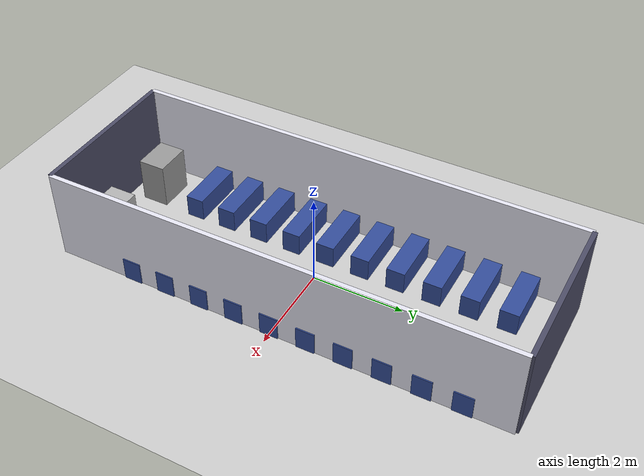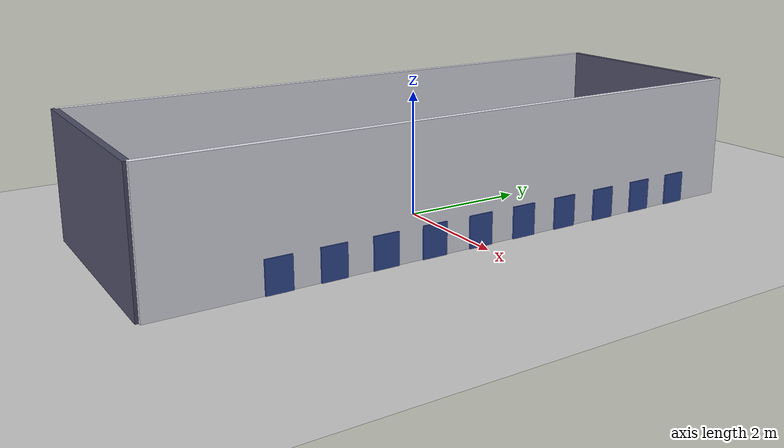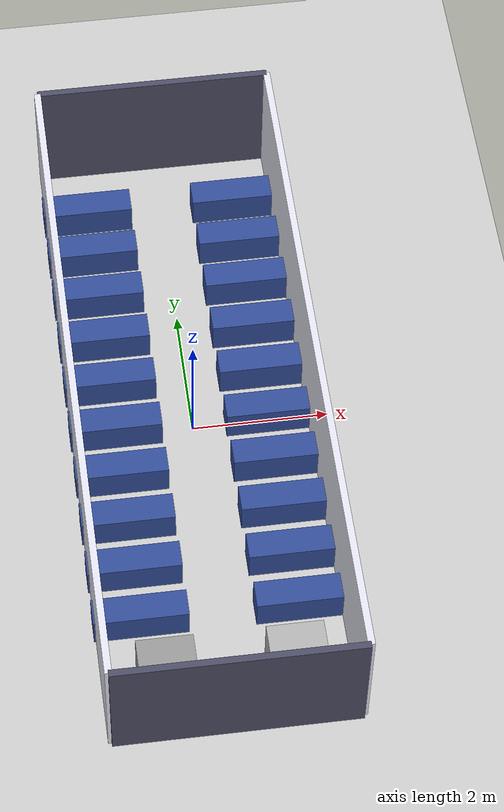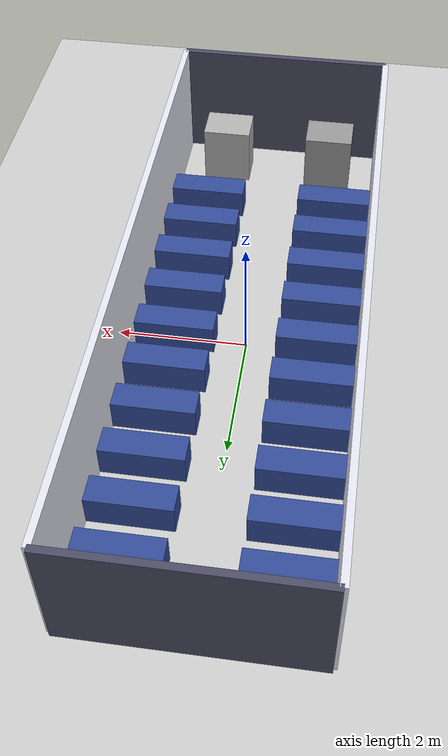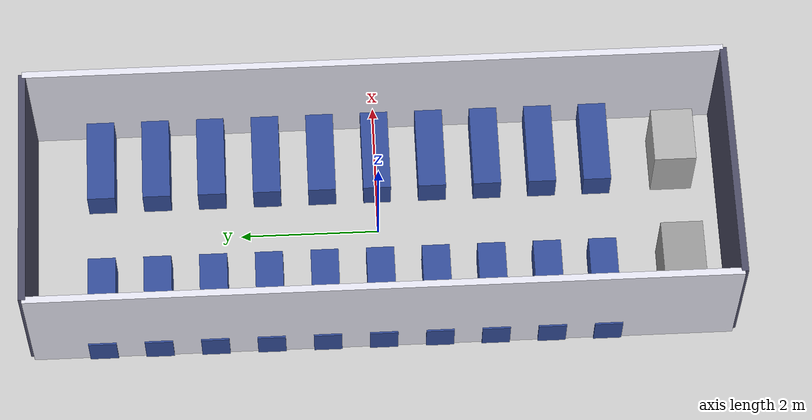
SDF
<?xml version="1.0"?>
<sdf version="1.6">
  <world name="airplane_cabin">

    <!-- ========== PHYSICS SETTINGS ========== -->
    <physics type="ode">
      <real_time_update_rate>1000.0</real_time_update_rate>
      <max_step_size>0.001</max_step_size>
    </physics>

    <!-- ========== LIGHTING ========== -->
    <light type="directional" name="sun">
      <cast_shadows>true</cast_shadows>
      <pose>0 0 10 0 0 0</pose>
      <diffuse>0.8 0.8 0.8 1</diffuse>
      <specular>0.2 0.2 0.2 1</specular>
      <attenuation>
        <range>1000</range>
        <constant>0.9</constant>
        <linear>0.01</linear>
        <quadratic>0.001</quadratic>
      </attenuation>
      <direction>-0.5 0.1 -0.9</direction>
    </light>

    <light name="cabin_light_1" type="point">
      <pose>0 0 2.5 0 0 0</pose>
      <diffuse>0.8 0.8 0.8 1</diffuse>
      <specular>0.2 0.2 0.2 1</specular>
    </light>

    <!-- ========== GROUND PLANE ========== -->
    <model name="ground_plane">
      <static>true</static>
      <link name="link">
        <collision name="collision">
          <geometry>
            <plane>
              <normal>0 0 1</normal>
              <size>100 100</size>
            </plane>
          </geometry>
        </collision>
        <visual name="visual">
          <geometry>
            <plane>
              <normal>0 0 1</normal>
              <size>100 100</size>
            </plane>
          </geometry>
          <material>
            <ambient>0.8 0.8 0.8 1</ambient>
            <diffuse>0.8 0.8 0.8 1</diffuse>
            <specular>0.8 0.8 0.8 1</specular>
          </material>
        </visual>
      </link>
    </model>

    <!-- ========== CABIN WALLS ========== -->
    <!-- Left Wall -->
    <model name="left_wall">
      <static>true</static>
      <pose>-1.75 0 1.0 0 0 0</pose>
      <link name="link">
        <collision name="collision">
          <geometry>
            <box>
              <size>0.1 10 2.0</size>
            </box>
          </geometry>
        </collision>
        <visual name="visual">
          <geometry>
            <box>
              <size>0.1 10 2.0</size>
            </box>
          </geometry>
          <material>
            <ambient>0.9 0.9 0.95 1</ambient>
            <diffuse>0.9 0.9 0.95 1</diffuse>
          </material>
        </visual>
      </link>
    </model>

    <!-- Right Wall -->
    <model name="right_wall">
      <static>true</static>
      <pose>1.75 0 1.0 0 0 0</pose>
      <link name="link">
        <collision name="collision">
          <geometry>
            <box>
              <size>0.1 10 2.0</size>
            </box>
          </geometry>
        </collision>
        <visual name="visual">
          <geometry>
            <box>
              <size>0.1 10 2.0</size>
            </box>
          </geometry>
          <material>
            <ambient>0.9 0.9 0.95 1</ambient>
            <diffuse>0.9 0.9 0.95 1</diffuse>
          </material>
        </visual>
      </link>
    </model>

    <!-- Front Wall (Cockpit) -->
    <model name="front_wall">
      <static>true</static>
      <pose>0 5.0 1.0 0 0 0</pose>
      <link name="link">
        <collision name="collision">
          <geometry>
            <box>
              <size>3.5 0.1 2.0</size>
            </box>
          </geometry>
        </collision>
        <visual name="visual">
          <geometry>
            <box>
              <size>3.5 0.1 2.0</size>
            </box>
          </geometry>
          <material>
            <ambient>0.3 0.3 0.4 1</ambient>
            <diffuse>0.3 0.3 0.4 1</diffuse>
          </material>
        </visual>
      </link>
    </model>

    <!-- Back Wall (Galley/Lavatory Area) -->
    <model name="back_wall">
      <static>true</static>
      <pose>0 -5.0 1.0 0 0 0</pose>
      <link name="link">
        <collision name="collision">
          <geometry>
            <box>
              <size>3.5 0.1 2.0</size>
            </box>
          </geometry>
        </collision>
        <visual name="visual">
          <geometry>
            <box>
              <size>3.5 0.1 2.0</size>
            </box>
          </geometry>
          <material>
            <ambient>0.3 0.3 0.4 1</ambient>
            <diffuse>0.3 0.3 0.4 1</diffuse>
          </material>
        </visual>
      </link>
    </model>

    <!-- ========== LEFT SIDE SEATS (ROWS 1-10) ========== -->
    <model name="seat_row1_left">
      <static>true</static>
      <pose>-1.15 4.0 0.25 0 0 0</pose>
      <link name="link">
        <collision name="collision">
          <geometry>
            <box>
              <size>1.35 0.40 0.5</size>
            </box>
          </geometry>
        </collision>
        <visual name="visual">
          <geometry>
            <box>
              <size>1.35 0.40 0.5</size>
            </box>
          </geometry>
          <material>
            <ambient>0.2 0.3 0.6 1</ambient>
            <diffuse>0.2 0.3 0.6 1</diffuse>
          </material>
        </visual>
      </link>
    </model>

    <model name="seat_row2_left">
      <static>true</static>
      <pose>-1.15 3.2 0.25 0 0 0</pose>
      <link name="link">
        <collision name="collision">
          <geometry>
            <box>
              <size>1.35 0.40 0.5</size>
            </box>
          </geometry>
        </collision>
        <visual name="visual">
          <geometry>
            <box>
              <size>1.35 0.40 0.5</size>
            </box>
          </geometry>
          <material>
            <ambient>0.2 0.3 0.6 1</ambient>
            <diffuse>0.2 0.3 0.6 1</diffuse>
          </material>
        </visual>
      </link>
    </model>

    <model name="seat_row3_left">
      <static>true</static>
      <pose>-1.15 2.4 0.25 0 0 0</pose>
      <link name="link">
        <collision name="collision">
          <geometry>
            <box>
              <size>1.35 0.40 0.5</size>
            </box>
          </geometry>
        </collision>
        <visual name="visual">
          <geometry>
            <box>
              <size>1.35 0.40 0.5</size>
            </box>
          </geometry>
          <material>
            <ambient>0.2 0.3 0.6 1</ambient>
            <diffuse>0.2 0.3 0.6 1</diffuse>
          </material>
        </visual>
      </link>
    </model>

    <model name="seat_row4_left">
      <static>true</static>
      <pose>-1.15 1.6 0.25 0 0 0</pose>
      <link name="link">
        <collision name="collision">
          <geometry>
            <box>
              <size>1.35 0.40 0.5</size>
            </box>
          </geometry>
        </collision>
        <visual name="visual">
          <geometry>
            <box>
              <size>1.35 0.40 0.5</size>
            </box>
          </geometry>
          <material>
            <ambient>0.2 0.3 0.6 1</ambient>
            <diffuse>0.2 0.3 0.6 1</diffuse>
          </material>
        </visual>
      </link>
    </model>

    <model name="seat_row5_left">
      <static>true</static>
      <pose>-1.15 0.8 0.25 0 0 0</pose>
      <link name="link">
        <collision name="collision">
          <geometry>
            <box>
              <size>1.35 0.40 0.5</size>
            </box>
          </geometry>
        </collision>
        <visual name="visual">
          <geometry>
            <box>
              <size>1.35 0.40 0.5</size>
            </box>
          </geometry>
          <material>
            <ambient>0.2 0.3 0.6 1</ambient>
            <diffuse>0.2 0.3 0.6 1</diffuse>
          </material>
        </visual>
      </link>
    </model>

    <model name="seat_row6_left">
      <static>true</static>
      <pose>-1.15 0.0 0.25 0 0 0</pose>
      <link name="link">
        <collision name="collision">
          <geometry>
            <box>
              <size>1.35 0.40 0.5</size>
            </box>
          </geometry>
        </collision>
        <visual name="visual">
          <geometry>
            <box>
              <size>1.35 0.40 0.5</size>
            </box>
          </geometry>
          <material>
            <ambient>0.2 0.3 0.6 1</ambient>
            <diffuse>0.2 0.3 0.6 1</diffuse>
          </material>
        </visual>
      </link>
    </model>

    <model name="seat_row7_left">
      <static>true</static>
      <pose>-1.15 -0.8 0.25 0 0 0</pose>
      <link name="link">
        <collision name="collision">
          <geometry>
            <box>
              <size>1.35 0.40 0.5</size>
            </box>
          </geometry>
        </collision>
        <visual name="visual">
          <geometry>
            <box>
              <size>1.35 0.40 0.5</size>
            </box>
          </geometry>
          <material>
            <ambient>0.2 0.3 0.6 1</ambient>
            <diffuse>0.2 0.3 0.6 1</diffuse>
          </material>
        </visual>
      </link>
    </model>

    <model name="seat_row8_left">
      <static>true</static>
      <pose>-1.15 -1.6 0.25 0 0 0</pose>
      <link name="link">
        <collision name="collision">
          <geometry>
            <box>
              <size>1.35 0.40 0.5</size>
            </box>
          </geometry>
        </collision>
        <visual name="visual">
          <geometry>
            <box>
              <size>1.35 0.40 0.5</size>
            </box>
          </geometry>
          <material>
            <ambient>0.2 0.3 0.6 1</ambient>
            <diffuse>0.2 0.3 0.6 1</diffuse>
          </material>
        </visual>
      </link>
    </model>

    <model name="seat_row9_left">
      <static>true</static>
      <pose>-1.15 -2.4 0.25 0 0 0</pose>
      <link name="link">
        <collision name="collision">
          <geometry>
            <box>
              <size>1.35 0.40 0.5</size>
            </box>
          </geometry>
        </collision>
        <visual name="visual">
          <geometry>
            <box>
              <size>1.35 0.40 0.5</size>
            </box>
          </geometry>
          <material>
            <ambient>0.2 0.3 0.6 1</ambient>
            <diffuse>0.2 0.3 0.6 1</diffuse>
          </material>
        </visual>
      </link>
    </model>

    <model name="seat_row10_left">
      <static>true</static>
      <pose>-1.15 -3.2 0.25 0 0 0</pose>
      <link name="link">
        <collision name="collision">
          <geometry>
            <box>
              <size>1.35 0.40 0.5</size>
            </box>
          </geometry>
        </collision>
        <visual name="visual">
          <geometry>
            <box>
              <size>1.35 0.40 0.5</size>
            </box>
          </geometry>
          <material>
            <ambient>0.2 0.3 0.6 1</ambient>
            <diffuse>0.2 0.3 0.6 1</diffuse>
          </material>
        </visual>
      </link>
    </model>

    <!-- ========== RIGHT SIDE SEATS (ROWS 1-10) ========== -->
    <model name="seat_row1_right">
      <static>true</static>
      <pose>1.15 4.0 0.25 0 0 0</pose>
      <link name="link">
        <collision name="collision">
          <geometry>
            <box>
              <size>1.35 0.40 0.5</size>
            </box>
          </geometry>
        </collision>
        <visual name="visual">
          <geometry>
            <box>
              <size>1.35 0.40 0.5</size>
            </box>
          </geometry>
          <material>
            <ambient>0.2 0.3 0.6 1</ambient>
            <diffuse>0.2 0.3 0.6 1</diffuse>
          </material>
        </visual>
      </link>
    </model>

    <model name="seat_row2_right">
      <static>true</static>
      <pose>1.15 3.2 0.25 0 0 0</pose>
      <link name="link">
        <collision name="collision">
          <geometry>
            <box>
              <size>1.35 0.40 0.5</size>
            </box>
          </geometry>
        </collision>
        <visual name="visual">
          <geometry>
            <box>
              <size>1.35 0.40 0.5</size>
            </box>
          </geometry>
          <material>
            <ambient>0.2 0.3 0.6 1</ambient>
            <diffuse>0.2 0.3 0.6 1</diffuse>
          </material>
        </visual>
      </link>
    </model>

    <model name="seat_row3_right">
      <static>true</static>
      <pose>1.15 2.4 0.25 0 0 0</pose>
      <link name="link">
        <collision name="collision">
          <geometry>
            <box>
              <size>1.35 0.40 0.5</size>
            </box>
          </geometry>
        </collision>
        <visual name="visual">
          <geometry>
            <box>
              <size>1.35 0.40 0.5</size>
            </box>
          </geometry>
          <material>
            <ambient>0.2 0.3 0.6 1</ambient>
            <diffuse>0.2 0.3 0.6 1</diffuse>
          </material>
        </visual>
      </link>
    </model>

    <model name="seat_row4_right">
      <static>true</static>
      <pose>1.15 1.6 0.25 0 0 0</pose>
      <link name="link">
        <collision name="collision">
          <geometry>
            <box>
              <size>1.35 0.40 0.5</size>
            </box>
          </geometry>
        </collision>
        <visual name="visual">
          <geometry>
            <box>
              <size>1.35 0.40 0.5</size>
            </box>
          </geometry>
          <material>
            <ambient>0.2 0.3 0.6 1</ambient>
            <diffuse>0.2 0.3 0.6 1</diffuse>
          </material>
        </visual>
      </link>
    </model>

    <model name="seat_row5_right">
      <static>true</static>
      <pose>1.15 0.8 0.25 0 0 0</pose>
      <link name="link">
        <collision name="collision">
          <geometry>
            <box>
              <size>1.35 0.40 0.5</size>
            </box>
          </geometry>
        </collision>
        <visual name="visual">
          <geometry>
            <box>
              <size>1.35 0.40 0.5</size>
            </box>
          </geometry>
          <material>
            <ambient>0.2 0.3 0.6 1</ambient>
            <diffuse>0.2 0.3 0.6 1</diffuse>
          </material>
        </visual>
      </link>
    </model>

    <model name="seat_row6_right">
      <static>true</static>
      <pose>1.15 0.0 0.25 0 0 0</pose>
      <link name="link">
        <collision name="collision">
          <geometry>
            <box>
              <size>1.35 0.40 0.5</size>
            </box>
          </geometry>
        </collision>
        <visual name="visual">
          <geometry>
            <box>
              <size>1.35 0.40 0.5</size>
            </box>
          </geometry>
          <material>
            <ambient>0.2 0.3 0.6 1</ambient>
            <diffuse>0.2 0.3 0.6 1</diffuse>
          </material>
        </visual>
      </link>
    </model>

    <model name="seat_row7_right">
      <static>true</static>
      <pose>1.15 -0.8 0.25 0 0 0</pose>
      <link name="link">
        <collision name="collision">
          <geometry>
            <box>
              <size>1.35 0.40 0.5</size>
            </box>
          </geometry>
        </collision>
        <visual name="visual">
          <geometry>
            <box>
              <size>1.35 0.40 0.5</size>
            </box>
          </geometry>
          <material>
            <ambient>0.2 0.3 0.6 1</ambient>
            <diffuse>0.2 0.3 0.6 1</diffuse>
          </material>
        </visual>
      </link>
    </model>

    <model name="seat_row8_right">
      <static>true</static>
      <pose>1.15 -1.6 0.25 0 0 0</pose>
      <link name="link">
        <collision name="collision">
          <geometry>
            <box>
              <size>1.35 0.40 0.5</size>
            </box>
          </geometry>
        </collision>
        <visual name="visual">
          <geometry>
            <box>
              <size>1.35 0.40 0.5</size>
            </box>
          </geometry>
          <material>
            <ambient>0.2 0.3 0.6 1</ambient>
            <diffuse>0.2 0.3 0.6 1</diffuse>
          </material>
        </visual>
      </link>
    </model>

    <model name="seat_row9_right">
      <static>true</static>
      <pose>1.15 -2.4 0.25 0 0 0</pose>
      <link name="link">
        <collision name="collision">
          <geometry>
            <box>
              <size>1.35 0.40 0.5</size>
            </box>
          </geometry>
        </collision>
        <visual name="visual">
          <geometry>
            <box>
              <size>1.35 0.40 0.5</size>
            </box>
          </geometry>
          <material>
            <ambient>0.2 0.3 0.6 1</ambient>
            <diffuse>0.2 0.3 0.6 1</diffuse>
          </material>
        </visual>
      </link>
    </model>

    <model name="seat_row10_right">
      <static>true</static>
      <pose>1.15 -3.2 0.25 0 0 0</pose>
      <link name="link">
        <collision name="collision">
          <geometry>
            <box>
              <size>1.35 0.40 0.5</size>
            </box>
          </geometry>
        </collision>
        <visual name="visual">
          <geometry>
            <box>
              <size>1.35 0.40 0.5</size>
            </box>
          </geometry>
          <material>
            <ambient>0.2 0.3 0.6 1</ambient>
            <diffuse>0.2 0.3 0.6 1</diffuse>
          </material>
        </visual>
      </link>
    </model>

    <!-- ========== BACK AREA (GALLEY & LAVATORY) ========== -->
    <model name="galley">
      <static>true</static>
      <pose>-0.9 -4.3 0.5 0 0 0</pose>
      <link name="link">
        <collision name="collision">
          <geometry>
            <box>
              <size>0.8 0.6 1.0</size>
            </box>
          </geometry>
        </collision>
        <visual name="visual">
          <geometry>
            <box>
              <size>0.8 0.6 1.0</size>
            </box>
          </geometry>
          <material>
            <ambient>0.6 0.6 0.6 1</ambient>
            <diffuse>0.6 0.6 0.6 1</diffuse>
          </material>
        </visual>
      </link>
    </model>

    <model name="lavatory">
      <static>true</static>
      <pose>0.9 -4.3 0.5 0 0 0</pose>
      <link name="link">
        <collision name="collision">
          <geometry>
            <box>
              <size>0.8 0.6 1.0</size>
            </box>
          </geometry>
        </collision>
        <visual name="visual">
          <geometry>
            <box>
              <size>0.8 0.6 1.0</size>
            </box>
          </geometry>
          <material>
            <ambient>0.7 0.7 0.7 1</ambient>
            <diffuse>0.7 0.7 0.7 1</diffuse>
          </material>
        </visual>
      </link>
    </model>

  </world>
</sdf>
